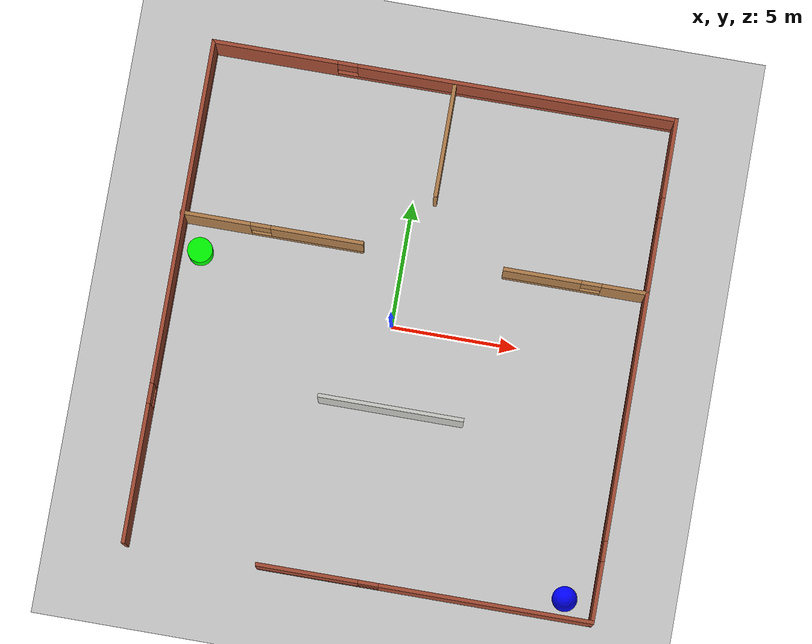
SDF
<sdf version="1.6">
 <world name="default">
  <model name="ground_plane">
   <static>1</static>
   <link name="link">
    <collision name="collision">
     <geometry><plane><normal>0 0 1</normal><size>100 100</size></plane></geometry>
     <surface><friction><ode><mu>100</mu><mu2>50</mu2></ode></friction></surface>
    </collision>
    <visual name="visual">
     <cast_shadows>0</cast_shadows>
     <geometry><plane><normal>0 0 1</normal><size>100 100</size></plane></geometry>
     <material>
      <script><uri>file://media/materials/scripts/gazebo.material</uri><name>Gazebo/Grey</name></script>
     </material>
    </visual>
   </link>
  </model>
  <model name="Untitled">
   <pose>0.438494 -0.299 0 0 -0 0</pose>
   <link name="Wall_10">
    <pose>0.014006 9.925 0 0 -0 0</pose>
    <visual name="Wall_10_Visual_0">
     <pose>-6.74827 0 1.25 0 -0 0</pose>
     <geometry><box><size>5.00047 0.15 2.5</size></box></geometry>
     <material>
      <script><uri>file://media/materials/scripts/gazebo.material</uri><name>Gazebo/Bricks</name></script>
      <ambient>0.333333 0.666667 1 1</ambient>
     </material>
     <meta><layer>0</layer></meta>
    </visual>
    <collision name="Wall_10_Collision_0">
     <geometry><box><size>5.00047 0.15 2.5</size></box></geometry>
     <pose>-6.74827 0 1.25 0 -0 0</pose>
    </collision>
    <visual name="Wall_10_Visual_1">
     <pose>2.50023 0 0.25 0 -0 0</pose>
     <geometry><box><size>13.4965 0.15 0.5</size></box></geometry>
     <material>
      <script><uri>file://media/materials/scripts/gazebo.material</uri><name>Gazebo/Bricks</name></script>
      <ambient>0.333333 0.666667 1 1</ambient>
     </material>
     <meta><layer>0</layer></meta>
    </visual>
    <collision name="Wall_10_Collision_1">
     <geometry><box><size>13.4965 0.15 0.5</size></box></geometry>
     <pose>2.50023 0 0.25 0 -0 0</pose>
    </collision>
    <visual name="Wall_10_Visual_2">
     <pose>2.90023 0 1.5 0 -0 0</pose>
     <geometry><box><size>12.6965 0.15 2</size></box></geometry>
     <material>
      <script><uri>file://media/materials/scripts/gazebo.material</uri><name>Gazebo/Bricks</name></script>
      <ambient>0.333333 0.666667 1 1</ambient>
     </material>
     <meta><layer>0</layer></meta>
    </visual>
    <collision name="Wall_10_Collision_2">
     <geometry><box><size>12.6965 0.15 2</size></box></geometry>
     <pose>2.90023 0 1.5 0 -0 0</pose>
    </collision>
    <visual name="Wall_10_Visual_3">
     <pose>-3.84803 0 1.9 0 -0 0</pose>
     <geometry><box><size>0.8 0.15 1.2</size></box></geometry>
     <material>
      <script><uri>file://media/materials/scripts/gazebo.material</uri><name>Gazebo/Bricks</name></script>
      <ambient>0.333333 0.666667 1 1</ambient>
     </material>
     <meta><layer>0</layer></meta>
    </visual>
    <collision name="Wall_10_Collision_3">
     <geometry><box><size>0.8 0.15 1.2</size></box></geometry>
     <pose>-3.84803 0 1.9 0 -0 0</pose>
    </collision>
   </link>
   <link name="Wall_11">
    <pose>9.18751 0 0 0 0 -1.5708</pose>
    <visual name="Wall_11_Visual_0">
     <pose>-8.40838 0 1.25 0 -0 0</pose>
     <geometry><box><size>3.18324 0.15 2.5</size></box></geometry>
     <material>
      <script><uri>file://media/materials/scripts/gazebo.material</uri><name>Gazebo/Bricks</name></script>
      <ambient>1 0 0 1</ambient>
     </material>
     <meta><layer>0</layer></meta>
    </visual>
    <collision name="Wall_11_Collision_0">
     <geometry><box><size>3.18324 0.15 2.5</size></box></geometry>
     <pose>-8.40838 0 1.25 0 -0 0</pose>
    </collision>
    <visual name="Wall_11_Visual_1">
     <pose>1.59162 0 0.25 0 -0 0</pose>
     <geometry><box><size>16.8168 0.15 0.5</size></box></geometry>
     <material>
      <script><uri>file://media/materials/scripts/gazebo.material</uri><name>Gazebo/Bricks</name></script>
      <ambient>1 0 0 1</ambient>
     </material>
     <meta><layer>0</layer></meta>
    </visual>
    <collision name="Wall_11_Collision_1">
     <geometry><box><size>16.8168 0.15 0.5</size></box></geometry>
     <pose>1.59162 0 0.25 0 -0 0</pose>
    </collision>
    <visual name="Wall_11_Visual_2">
     <pose>0.366345 0 1.5 0 -0 0</pose>
     <geometry><box><size>12.7662 0.15 2</size></box></geometry>
     <material>
      <script><uri>file://media/materials/scripts/gazebo.material</uri><name>Gazebo/Bricks</name></script>
      <ambient>1 0 0 1</ambient>
     </material>
     <meta><layer>0</layer></meta>
    </visual>
    <collision name="Wall_11_Collision_2">
     <geometry><box><size>12.7662 0.15 2</size></box></geometry>
     <pose>0.366345 0 1.5 0 -0 0</pose>
    </collision>
    <visual name="Wall_11_Visual_3">
     <pose>8.77472 0 1.5 0 -0 0</pose>
     <geometry><box><size>2.45055 0.15 2</size></box></geometry>
     <material>
      <script><uri>file://media/materials/scripts/gazebo.material</uri><name>Gazebo/Bricks</name></script>
      <ambient>1 0 0 1</ambient>
     </material>
     <meta><layer>0</layer></meta>
    </visual>
    <collision name="Wall_11_Collision_3">
     <geometry><box><size>2.45055 0.15 2</size></box></geometry>
     <pose>8.77472 0 1.5 0 -0 0</pose>
    </collision>
    <visual name="Wall_11_Visual_4">
     <pose>-6.41676 0 1.9 0 -0 0</pose>
     <geometry><box><size>0.8 0.15 1.2</size></box></geometry>
     <material>
      <script><uri>file://media/materials/scripts/gazebo.material</uri><name>Gazebo/Bricks</name></script>
      <ambient>1 0 0 1</ambient>
     </material>
     <meta><layer>0</layer></meta>
    </visual>
    <collision name="Wall_11_Collision_4">
     <geometry><box><size>0.8 0.15 1.2</size></box></geometry>
     <pose>-6.41676 0 1.9 0 -0 0</pose>
    </collision>
    <visual name="Wall_11_Visual_5">
     <pose>7.14945 0 1.9 0 -0 0</pose>
     <geometry><box><size>0.8 0.15 1.2</size></box></geometry>
     <material>
      <script><uri>file://media/materials/scripts/gazebo.material</uri><name>Gazebo/Bricks</name></script>
      <ambient>1 0 0 1</ambient>
     </material>
     <meta><layer>0</layer></meta>
    </visual>
    <collision name="Wall_11_Collision_5">
     <geometry><box><size>0.8 0.15 1.2</size></box></geometry>
     <pose>7.14945 0 1.9 0 -0 0</pose>
    </collision>
   </link>
   <link name="Wall_14">
    <pose>2.63751 -9.925 0 0 -0 3.14159</pose>
    <visual name="Wall_14_Visual_0">
     <pose>-2.40596 0 1.25 0 -0 0</pose>
     <geometry><box><size>8.43808 0.15 2.5</size></box></geometry>
     <material>
      <script><uri>file://media/materials/scripts/gazebo.material</uri><name>Gazebo/Bricks</name></script>
      <ambient>1 0.333333 1 1</ambient>
     </material>
     <meta><layer>0</layer></meta>
    </visual>
    <collision name="Wall_14_Collision_0">
     <geometry><box><size>8.43808 0.15 2.5</size></box></geometry>
     <pose>-2.40596 0 1.25 0 -0 0</pose>
    </collision>
    <visual name="Wall_14_Visual_1">
     <pose>4.21904 0 0.25 0 -0 0</pose>
     <geometry><box><size>4.81192 0.15 0.5</size></box></geometry>
     <material>
      <script><uri>file://media/materials/scripts/gazebo.material</uri><name>Gazebo/Bricks</name></script>
      <ambient>1 0.333333 1 1</ambient>
     </material>
     <meta><layer>0</layer></meta>
    </visual>
    <collision name="Wall_14_Collision_1">
     <geometry><box><size>4.81192 0.15 0.5</size></box></geometry>
     <pose>4.21904 0 0.25 0 -0 0</pose>
    </collision>
    <visual name="Wall_14_Visual_2">
     <pose>4.61904 0 1.5 0 -0 0</pose>
     <geometry><box><size>4.01192 0.15 2</size></box></geometry>
     <material>
      <script><uri>file://media/materials/scripts/gazebo.material</uri><name>Gazebo/Bricks</name></script>
      <ambient>1 0.333333 1 1</ambient>
     </material>
     <meta><layer>0</layer></meta>
    </visual>
    <collision name="Wall_14_Collision_2">
     <geometry><box><size>4.01192 0.15 2</size></box></geometry>
     <pose>4.61904 0 1.5 0 -0 0</pose>
    </collision>
    <visual name="Wall_14_Visual_3">
     <pose>2.21308 0 1.9 0 -0 0</pose>
     <geometry><box><size>0.8 0.15 1.2</size></box></geometry>
     <material>
      <script><uri>file://media/materials/scripts/gazebo.material</uri><name>Gazebo/Bricks</name></script>
      <ambient>1 0.333333 1 1</ambient>
     </material>
     <meta><layer>0</layer></meta>
    </visual>
    <collision name="Wall_14_Collision_3">
     <geometry><box><size>0.8 0.15 1.2</size></box></geometry>
     <pose>2.21308 0 1.9 0 -0 0</pose>
    </collision>
   </link>
   <link name="Wall_17">
    <pose>-5.63751 3.07083 0 0 -0 0</pose>
    <visual name="Wall_17_Visual_0">
     <pose>-2.23621 0 1.25 0 -0 0</pose>
     <geometry><box><size>2.77759 0.15 2.5</size></box></geometry>
     <material>
      <script><uri>file://media/materials/scripts/gazebo.material</uri><name>Gazebo/Wood</name></script>
      <ambient>1 1 0 1</ambient>
     </material>
     <meta><layer>0</layer></meta>
    </visual>
    <collision name="Wall_17_Collision_0">
     <geometry><box><size>2.77759 0.15 2.5</size></box></geometry>
     <pose>-2.23621 0 1.25 0 -0 0</pose>
    </collision>
    <visual name="Wall_17_Visual_1">
     <pose>1.38879 0 0.25 0 -0 0</pose>
     <geometry><box><size>4.47241 0.15 0.5</size></box></geometry>
     <material>
      <script><uri>file://media/materials/scripts/gazebo.material</uri><name>Gazebo/Wood</name></script>
      <ambient>1 1 0 1</ambient>
     </material>
     <meta><layer>0</layer></meta>
    </visual>
    <collision name="Wall_17_Collision_1">
     <geometry><box><size>4.47241 0.15 0.5</size></box></geometry>
     <pose>1.38879 0 0.25 0 -0 0</pose>
    </collision>
    <visual name="Wall_17_Visual_2">
     <pose>1.78879 0 1.5 0 -0 0</pose>
     <geometry><box><size>3.67241 0.15 2</size></box></geometry>
     <material>
      <script><uri>file://media/materials/scripts/gazebo.material</uri><name>Gazebo/Wood</name></script>
      <ambient>1 1 0 1</ambient>
     </material>
     <meta><layer>0</layer></meta>
    </visual>
    <collision name="Wall_17_Collision_2">
     <geometry><box><size>3.67241 0.15 2</size></box></geometry>
     <pose>1.78879 0 1.5 0 -0 0</pose>
    </collision>
    <visual name="Wall_17_Visual_3">
     <pose>-0.447415 0 1.9 0 -0 0</pose>
     <geometry><box><size>0.8 0.15 1.2</size></box></geometry>
     <material>
      <script><uri>file://media/materials/scripts/gazebo.material</uri><name>Gazebo/Wood</name></script>
      <ambient>1 1 0 1</ambient>
     </material>
     <meta><layer>0</layer></meta>
    </visual>
    <collision name="Wall_17_Collision_3">
     <geometry><box><size>0.8 0.15 1.2</size></box></geometry>
     <pose>-0.447415 0 1.9 0 -0 0</pose>
    </collision>
   </link>
   <link name="Wall_19">
    <pose>6.38466 3.01 0 0 -0 3.14159</pose>
    <visual name="Wall_19_Visual_0">
     <pose>-1.94247 0 1.25 0 -0 0</pose>
     <geometry><box><size>1.86506 0.15 2.5</size></box></geometry>
     <material>
      <script><uri>file://media/materials/scripts/gazebo.material</uri><name>Gazebo/Wood</name></script>
      <ambient>1 0.333333 0.498039 1</ambient>
     </material>
     <meta><layer>0</layer></meta>
    </visual>
    <collision name="Wall_19_Collision_0">
     <geometry><box><size>1.86506 0.15 2.5</size></box></geometry>
     <pose>-1.94247 0 1.25 0 -0 0</pose>
    </collision>
    <visual name="Wall_19_Visual_1">
     <pose>0.93253 0 0.25 0 -0 0</pose>
     <geometry><box><size>3.88494 0.15 0.5</size></box></geometry>
     <material>
      <script><uri>file://media/materials/scripts/gazebo.material</uri><name>Gazebo/Wood</name></script>
      <ambient>1 0.333333 0.498039 1</ambient>
     </material>
     <meta><layer>0</layer></meta>
    </visual>
    <collision name="Wall_19_Collision_1">
     <geometry><box><size>3.88494 0.15 0.5</size></box></geometry>
     <pose>0.93253 0 0.25 0 -0 0</pose>
    </collision>
    <visual name="Wall_19_Visual_2">
     <pose>1.33253 0 1.5 0 -0 0</pose>
     <geometry><box><size>3.08494 0.15 2</size></box></geometry>
     <material>
      <script><uri>file://media/materials/scripts/gazebo.material</uri><name>Gazebo/Wood</name></script>
      <ambient>1 0.333333 0.498039 1</ambient>
     </material>
     <meta><layer>0</layer></meta>
    </visual>
    <collision name="Wall_19_Collision_2">
     <geometry><box><size>3.08494 0.15 2</size></box></geometry>
     <pose>1.33253 0 1.5 0 -0 0</pose>
    </collision>
    <visual name="Wall_19_Visual_3">
     <pose>-0.60994 0 1.9 0 -0 0</pose>
     <geometry><box><size>0.8 0.15 1.2</size></box></geometry>
     <material>
      <script><uri>file://media/materials/scripts/gazebo.material</uri><name>Gazebo/Wood</name></script>
      <ambient>1 0.333333 0.498039 1</ambient>
     </material>
     <meta><layer>0</layer></meta>
    </visual>
    <collision name="Wall_19_Collision_3">
     <geometry><box><size>0.8 0.15 1.2</size></box></geometry>
     <pose>-0.60994 0 1.9 0 -0 0</pose>
    </collision>
   </link>
   <link name="Wall_21">
    <collision name="Wall_21_Collision">
     <geometry><box><size>4.5 0.15 2.5</size></box></geometry>
     <pose>0 0 1.25 0 -0 0</pose>
    </collision>
    <visual name="Wall_21_Visual">
     <pose>0 0 1.25 0 -0 0</pose>
     <geometry><box><size>4.5 0.15 2.5</size></box></geometry>
     <material>
      <script><uri>file://media/materials/scripts/gazebo.material</uri><name>Gazebo/Wood</name></script>
      <ambient>0.666667 1 0 1</ambient>
     </material>
     <meta><layer>0</layer></meta>
    </visual>
    <pose>0.424424 7.58768 0 0 0 -1.5708</pose>
   </link>
   <link name="Wall_23">
    <collision name="Wall_23_Collision">
     <geometry><box><size>5.75 0.15 2.5</size></box></geometry>
     <pose>0 0 1.25 0 -0 0</pose>
    </collision>
    <visual name="Wall_23_Visual">
     <pose>0 0 1.25 0 -0 0</pose>
     <geometry><box><size>5.75 0.15 2.5</size></box></geometry>
     <material>
      <script><uri>file://media/materials/scripts/gazebo.material</uri><name>Gazebo/CeilingTiled</name></script>
      <ambient>0.760784 0.662745 0.627451 1</ambient>
     </material>
     <meta><layer>0</layer></meta>
    </visual>
    <pose>0.121839 -3.0735 0 0 -0 0</pose>
   </link>
   <link name="Wall_9">
    <pose>-9.15949 0 0 0 -0 1.5708</pose>
    <visual name="Wall_9_Visual_0">
     <pose>-7.25385 0 1.25 0 -0 0</pose>
     <geometry><box><size>5.4923 0.15 2.5</size></box></geometry>
     <material>
      <script><uri>file://media/materials/scripts/gazebo.material</uri><name>Gazebo/Bricks</name></script>
      <ambient>0.333333 0 0 1</ambient>
     </material>
     <meta><layer>0</layer></meta>
    </visual>
    <collision name="Wall_9_Collision_0">
     <geometry><box><size>5.4923 0.15 2.5</size></box></geometry>
     <pose>-7.25385 0 1.25 0 -0 0</pose>
    </collision>
    <visual name="Wall_9_Visual_1">
     <pose>2.74615 0 0.25 0 -0 0</pose>
     <geometry><box><size>14.5077 0.15 0.5</size></box></geometry>
     <material>
      <script><uri>file://media/materials/scripts/gazebo.material</uri><name>Gazebo/Bricks</name></script>
      <ambient>0.333333 0 0 1</ambient>
     </material>
     <meta><layer>0</layer></meta>
    </visual>
    <collision name="Wall_9_Collision_1">
     <geometry><box><size>14.5077 0.15 0.5</size></box></geometry>
     <pose>2.74615 0 0.25 0 -0 0</pose>
    </collision>
    <visual name="Wall_9_Visual_2">
     <pose>3.14615 0 1.5 0 -0 0</pose>
     <geometry><box><size>13.7077 0.15 2</size></box></geometry>
     <material>
      <script><uri>file://media/materials/scripts/gazebo.material</uri><name>Gazebo/Bricks</name></script>
      <ambient>0.333333 0 0 1</ambient>
     </material>
     <meta><layer>0</layer></meta>
    </visual>
    <collision name="Wall_9_Collision_2">
     <geometry><box><size>13.7077 0.15 2</size></box></geometry>
     <pose>3.14615 0 1.5 0 -0 0</pose>
    </collision>
    <visual name="Wall_9_Visual_3">
     <pose>-4.1077 0 1.9 0 -0 0</pose>
     <geometry><box><size>0.8 0.15 1.2</size></box></geometry>
     <material>
      <script><uri>file://media/materials/scripts/gazebo.material</uri><name>Gazebo/Bricks</name></script>
      <ambient>0.333333 0 0 1</ambient>
     </material>
     <meta><layer>0</layer></meta>
    </visual>
    <collision name="Wall_9_Collision_3">
     <geometry><box><size>0.8 0.15 1.2</size></box></geometry>
     <pose>-4.1077 0 1.9 0 -0 0</pose>
    </collision>
   </link>
   <static>1</static>
  </model>
  <model name="unit_cylinder">
   <link name="link">
    <inertial>
     <mass>100</mass>
     <inertia><ixx>0.145833</ixx><ixy>0</ixy><ixz>0</ixz><iyy>0.145833</iyy><iyz>0</iyz><izz>0.125</izz></inertia>
    </inertial>
    <visual name="visual">
     <geometry><cylinder><radius>0.5</radius><length>1</length></cylinder></geometry>
     <material>
      <script><name>Gazebo/Grey</name><uri>file://media/materials/scripts/gazebo.material</uri></script>
      <shader type="pixel"><normal_map>__default__</normal_map></shader>
      <ambient>0 1 0 1</ambient>
      <diffuse>0 1 0 1</diffuse>
      <specular>0.01 0.01 0.01 1</specular>
      <emissive>0 0 0 1</emissive>
     </material>
    </visual>
    <collision name="collision">
     <geometry><cylinder><radius>0.5</radius><length>1</length></cylinder></geometry>
     <surface>
      <friction>
       <ode><mu>1</mu><mu2>1</mu2><fdir1>0 0 0</fdir1><slip1>0</slip1><slip2>0</slip2></ode>
       <torsional>
        <coefficient>1</coefficient>
        <patch_radius>0</patch_radius>
        <surface_radius>0</surface_radius>
        <use_patch_radius>1</use_patch_radius>
        <ode><slip>0</slip></ode>
       </torsional>
      </friction>
      <bounce><restitution_coefficient>0</restitution_coefficient><threshold>1e+06</threshold></bounce>
      <contact>
       <collide_without_contact>0</collide_without_contact>
       <collide_without_contact_bitmask>1</collide_without_contact_bitmask>
       <collide_bitmask>1</collide_bitmask>
       <ode>
        <soft_cfm>0</soft_cfm>
        <soft_erp>0.2</soft_erp>
        <kp>1e+13</kp>
        <kd>1</kd>
        <max_vel>0.01</max_vel>
        <min_depth>0</min_depth>
       </ode>
       <bullet>
        <split_impulse>1</split_impulse>
        <split_impulse_penetration_threshold>-0.01</split_impulse_penetration_threshold>
        <soft_cfm>0</soft_cfm>
        <soft_erp>0.2</soft_erp>
        <kp>1e+13</kp>
        <kd>1</kd>
       </bullet>
      </contact>
     </surface>
    </collision>
   </link>
   <static>0</static>
   <pose>-7.90778 1.61588 0.499993 0 -0 0</pose>
  </model>
  <model name="unit_sphere">
   <link name="link">
    <inertial>
     <mass>100</mass>
     <inertia><ixx>0.1</ixx><ixy>0</ixy><ixz>0</ixz><iyy>0.1</iyy><iyz>0</iyz><izz>0.1</izz></inertia>
    </inertial>
    <visual name="visual">
     <geometry><sphere><radius>0.5</radius></sphere></geometry>
     <material>
      <script><name>Gazebo/Grey</name><uri>file://media/materials/scripts/gazebo.material</uri></script>
      <shader type="pixel"><normal_map>__default__</normal_map></shader>
      <ambient>0 0 1 1</ambient>
      <diffuse>0 0 1 1</diffuse>
      <specular>0.01 0.01 0.01 1</specular>
      <emissive>0 0 0 1</emissive>
     </material>
    </visual>
    <collision name="collision">
     <geometry><sphere><radius>0.5</radius></sphere></geometry>
     <surface>
      <friction>
       <ode><mu>1</mu><mu2>1</mu2><fdir1>0 0 0</fdir1><slip1>0</slip1><slip2>0</slip2></ode>
       <torsional>
        <coefficient>1</coefficient>
        <patch_radius>0</patch_radius>
        <surface_radius>0</surface_radius>
        <use_patch_radius>1</use_patch_radius>
        <ode><slip>0</slip></ode>
       </torsional>
      </friction>
      <bounce><restitution_coefficient>0</restitution_coefficient><threshold>1e+06</threshold></bounce>
      <contact>
       <collide_without_contact>0</collide_without_contact>
       <collide_without_contact_bitmask>1</collide_without_contact_bitmask>
       <collide_bitmask>1</collide_bitmask>
       <ode>
        <soft_cfm>0</soft_cfm>
        <soft_erp>0.2</soft_erp>
        <kp>1e+13</kp>
        <kd>1</kd>
        <max_vel>0.01</max_vel>
        <min_depth>0</min_depth>
       </ode>
       <bullet>
        <split_impulse>1</split_impulse>
        <split_impulse_penetration_threshold>-0.01</split_impulse_penetration_threshold>
        <soft_cfm>0</soft_cfm>
        <soft_erp>0.2</soft_erp>
        <kp>1e+13</kp>
        <kd>1</kd>
       </bullet>
      </contact>
     </surface>
    </collision>
   </link>
   <static>0</static>
   <pose>8.48505 -9.41376 0.5 0 -0 0</pose>
  </model>
 </world>
</sdf>
